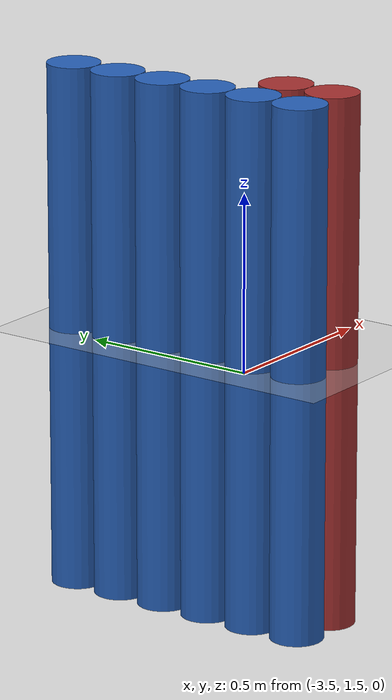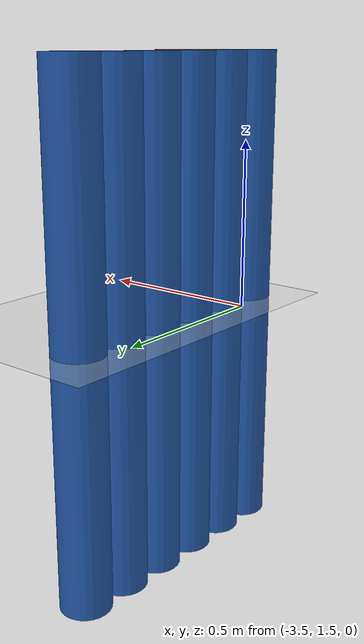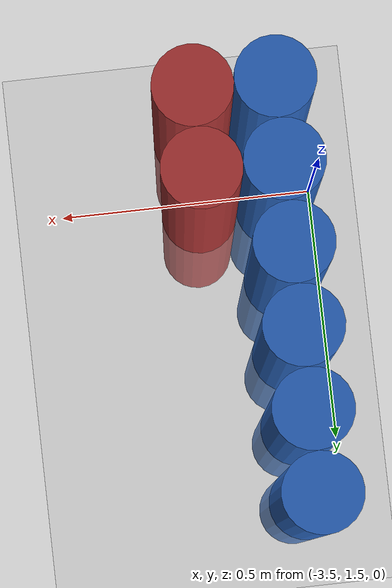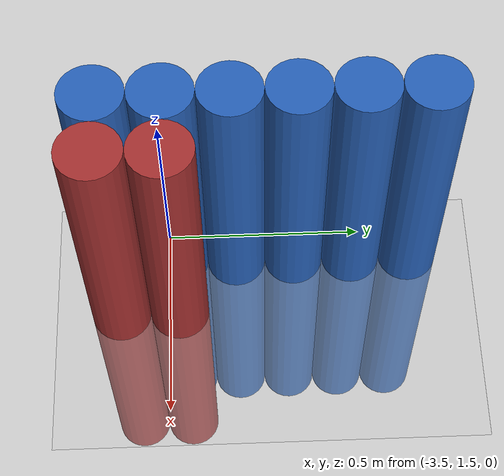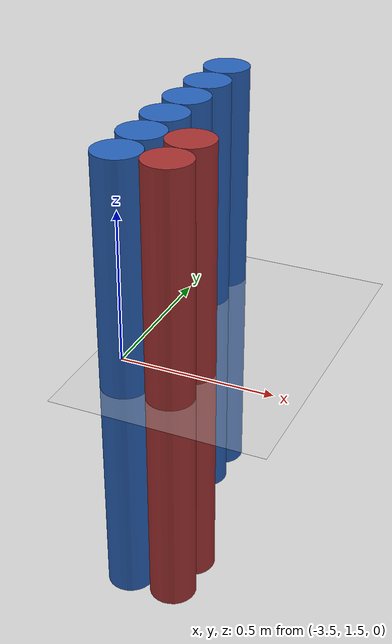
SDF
<sdf version="1.6">
 <world name="default">
  <model name="ground_plane">
   <static>1</static>
   <link name="link">
    <collision name="collision">
     <geometry><plane><normal>0 0 1</normal><size>100 100</size></plane></geometry>
     <surface><friction><ode><mu>100</mu><mu2>50</mu2></ode></friction></surface>
    </collision>
    <visual name="visual">
     <cast_shadows>0</cast_shadows>
     <geometry><plane><normal>0 0 1</normal><size>100 100</size></plane></geometry>
     <material>
      <script><uri>file://media/materials/scripts/gazebo.material</uri><name>Gazebo/Grey</name></script>
     </material>
    </visual>
   </link>
  </model>
  <model name="unit_cylinder_133">
   <static>1</static>
   <pose>-3.425000 1.375000 0.000000 0.000000 0.000000 0.000000</pose>
   <link name="link">
    <inertial>
     <mass>1</mass>
     <inertia><ixx>0.145833</ixx><ixy>0</ixy><ixz>0</ixz><iyy>0.145833</iyy><iyz>0</iyz><izz>0.125</izz></inertia>
    </inertial>
    <collision name="collision">
     <geometry><cylinder><radius>0.075000</radius><length>1.5</length></cylinder></geometry>
    </collision>
    <visual name="visual">
     <geometry><cylinder><radius>0.075000</radius><length>1.5</length></cylinder></geometry>
     <material>
      <ambient>0.152000 0.379000 0.720000 1</ambient>
      <diffuse>0.152000 0.379000 0.720000 1</diffuse>
     </material>
     <material>
      <script><name>Gazebo/Grey</name><uri>file://media/materials/scripts/gazebo.material</uri></script>
     </material>
    </visual>
   </link>
  </model>
  <model name="unit_cylinder_135">
   <static>1</static>
   <pose>-3.425000 1.525000 0.000000 0.000000 0.000000 0.000000</pose>
   <link name="link">
    <inertial>
     <mass>1</mass>
     <inertia><ixx>0.145833</ixx><ixy>0</ixy><ixz>0</ixz><iyy>0.145833</iyy><iyz>0</iyz><izz>0.125</izz></inertia>
    </inertial>
    <collision name="collision">
     <geometry><cylinder><radius>0.075000</radius><length>1.5</length></cylinder></geometry>
    </collision>
    <visual name="visual">
     <geometry><cylinder><radius>0.075000</radius><length>1.5</length></cylinder></geometry>
     <material>
      <ambient>0.152000 0.379000 0.720000 1</ambient>
      <diffuse>0.152000 0.379000 0.720000 1</diffuse>
     </material>
     <material>
      <script><name>Gazebo/Grey</name><uri>file://media/materials/scripts/gazebo.material</uri></script>
     </material>
    </visual>
   </link>
  </model>
  <model name="unit_cylinder_137">
   <static>1</static>
   <pose>-3.425000 1.675000 0.000000 0.000000 0.000000 0.000000</pose>
   <link name="link">
    <inertial>
     <mass>1</mass>
     <inertia><ixx>0.145833</ixx><ixy>0</ixy><ixz>0</ixz><iyy>0.145833</iyy><iyz>0</iyz><izz>0.125</izz></inertia>
    </inertial>
    <collision name="collision">
     <geometry><cylinder><radius>0.075000</radius><length>1.5</length></cylinder></geometry>
    </collision>
    <visual name="visual">
     <geometry><cylinder><radius>0.075000</radius><length>1.5</length></cylinder></geometry>
     <material>
      <ambient>0.152000 0.379000 0.720000 1</ambient>
      <diffuse>0.152000 0.379000 0.720000 1</diffuse>
     </material>
     <material>
      <script><name>Gazebo/Grey</name><uri>file://media/materials/scripts/gazebo.material</uri></script>
     </material>
    </visual>
   </link>
  </model>
  <model name="unit_cylinder_139">
   <static>1</static>
   <pose>-3.425000 1.825000 0.000000 0.000000 0.000000 0.000000</pose>
   <link name="link">
    <inertial>
     <mass>1</mass>
     <inertia><ixx>0.145833</ixx><ixy>0</ixy><ixz>0</ixz><iyy>0.145833</iyy><iyz>0</iyz><izz>0.125</izz></inertia>
    </inertial>
    <collision name="collision">
     <geometry><cylinder><radius>0.075000</radius><length>1.5</length></cylinder></geometry>
    </collision>
    <visual name="visual">
     <geometry><cylinder><radius>0.075000</radius><length>1.5</length></cylinder></geometry>
     <material>
      <ambient>0.152000 0.379000 0.720000 1</ambient>
      <diffuse>0.152000 0.379000 0.720000 1</diffuse>
     </material>
     <material>
      <script><name>Gazebo/Grey</name><uri>file://media/materials/scripts/gazebo.material</uri></script>
     </material>
    </visual>
   </link>
  </model>
  <model name="unit_cylinder_141">
   <static>1</static>
   <pose>-3.425000 1.975000 0.000000 0.000000 0.000000 0.000000</pose>
   <link name="link">
    <inertial>
     <mass>1</mass>
     <inertia><ixx>0.145833</ixx><ixy>0</ixy><ixz>0</ixz><iyy>0.145833</iyy><iyz>0</iyz><izz>0.125</izz></inertia>
    </inertial>
    <collision name="collision">
     <geometry><cylinder><radius>0.075000</radius><length>1.5</length></cylinder></geometry>
    </collision>
    <visual name="visual">
     <geometry><cylinder><radius>0.075000</radius><length>1.5</length></cylinder></geometry>
     <material>
      <ambient>0.152000 0.379000 0.720000 1</ambient>
      <diffuse>0.152000 0.379000 0.720000 1</diffuse>
     </material>
     <material>
      <script><name>Gazebo/Grey</name><uri>file://media/materials/scripts/gazebo.material</uri></script>
     </material>
    </visual>
   </link>
  </model>
  <model name="unit_cylinder_143">
   <static>1</static>
   <pose>-3.425000 2.125000 0.000000 0.000000 0.000000 0.000000</pose>
   <link name="link">
    <inertial>
     <mass>1</mass>
     <inertia><ixx>0.145833</ixx><ixy>0</ixy><ixz>0</ixz><iyy>0.145833</iyy><iyz>0</iyz><izz>0.125</izz></inertia>
    </inertial>
    <collision name="collision">
     <geometry><cylinder><radius>0.075000</radius><length>1.5</length></cylinder></geometry>
    </collision>
    <visual name="visual">
     <geometry><cylinder><radius>0.075000</radius><length>1.5</length></cylinder></geometry>
     <material>
      <ambient>0.152000 0.379000 0.720000 1</ambient>
      <diffuse>0.152000 0.379000 0.720000 1</diffuse>
     </material>
     <material>
      <script><name>Gazebo/Grey</name><uri>file://media/materials/scripts/gazebo.material</uri></script>
     </material>
    </visual>
   </link>
  </model>
  <model name="unit_cylinder_230">
   <static>1</static>
   <pose>-3.425000 1.375000 0.000000 0.000000 0.000000 0.000000</pose>
   <link name="link">
    <inertial>
     <mass>1</mass>
     <inertia><ixx>0.145833</ixx><ixy>0</ixy><ixz>0</ixz><iyy>0.145833</iyy><iyz>0</iyz><izz>0.125</izz></inertia>
    </inertial>
    <collision name="collision">
     <geometry><cylinder><radius>0.075000</radius><length>1.5</length></cylinder></geometry>
    </collision>
    <visual name="visual">
     <geometry><cylinder><radius>0.075000</radius><length>1.5</length></cylinder></geometry>
     <material>
      <ambient>0.152000 0.379000 0.720000 1</ambient>
      <diffuse>0.152000 0.379000 0.720000 1</diffuse>
     </material>
     <material>
      <script><name>Gazebo/Grey</name><uri>file://media/materials/scripts/gazebo.material</uri></script>
     </material>
    </visual>
   </link>
  </model>
  <model name="unit_cylinder_231">
   <static>1</static>
   <pose>-3.425000 1.525000 0.000000 0.000000 0.000000 0.000000</pose>
   <link name="link">
    <inertial>
     <mass>1</mass>
     <inertia><ixx>0.145833</ixx><ixy>0</ixy><ixz>0</ixz><iyy>0.145833</iyy><iyz>0</iyz><izz>0.125</izz></inertia>
    </inertial>
    <collision name="collision">
     <geometry><cylinder><radius>0.075000</radius><length>1.5</length></cylinder></geometry>
    </collision>
    <visual name="visual">
     <geometry><cylinder><radius>0.075000</radius><length>1.5</length></cylinder></geometry>
     <material>
      <ambient>0.152000 0.379000 0.720000 1</ambient>
      <diffuse>0.152000 0.379000 0.720000 1</diffuse>
     </material>
     <material>
      <script><name>Gazebo/Grey</name><uri>file://media/materials/scripts/gazebo.material</uri></script>
     </material>
    </visual>
   </link>
  </model>
  <model name="unit_cylinder_232">
   <static>1</static>
   <pose>-3.425000 1.675000 0.000000 0.000000 0.000000 0.000000</pose>
   <link name="link">
    <inertial>
     <mass>1</mass>
     <inertia><ixx>0.145833</ixx><ixy>0</ixy><ixz>0</ixz><iyy>0.145833</iyy><iyz>0</iyz><izz>0.125</izz></inertia>
    </inertial>
    <collision name="collision">
     <geometry><cylinder><radius>0.075000</radius><length>1.5</length></cylinder></geometry>
    </collision>
    <visual name="visual">
     <geometry><cylinder><radius>0.075000</radius><length>1.5</length></cylinder></geometry>
     <material>
      <ambient>0.152000 0.379000 0.720000 1</ambient>
      <diffuse>0.152000 0.379000 0.720000 1</diffuse>
     </material>
     <material>
      <script><name>Gazebo/Grey</name><uri>file://media/materials/scripts/gazebo.material</uri></script>
     </material>
    </visual>
   </link>
  </model>
  <model name="unit_cylinder_233">
   <static>1</static>
   <pose>-3.425000 1.825000 0.000000 0.000000 0.000000 0.000000</pose>
   <link name="link">
    <inertial>
     <mass>1</mass>
     <inertia><ixx>0.145833</ixx><ixy>0</ixy><ixz>0</ixz><iyy>0.145833</iyy><iyz>0</iyz><izz>0.125</izz></inertia>
    </inertial>
    <collision name="collision">
     <geometry><cylinder><radius>0.075000</radius><length>1.5</length></cylinder></geometry>
    </collision>
    <visual name="visual">
     <geometry><cylinder><radius>0.075000</radius><length>1.5</length></cylinder></geometry>
     <material>
      <ambient>0.152000 0.379000 0.720000 1</ambient>
      <diffuse>0.152000 0.379000 0.720000 1</diffuse>
     </material>
     <material>
      <script><name>Gazebo/Grey</name><uri>file://media/materials/scripts/gazebo.material</uri></script>
     </material>
    </visual>
   </link>
  </model>
  <model name="unit_cylinder_234">
   <static>1</static>
   <pose>-3.425000 1.975000 0.000000 0.000000 0.000000 0.000000</pose>
   <link name="link">
    <inertial>
     <mass>1</mass>
     <inertia><ixx>0.145833</ixx><ixy>0</ixy><ixz>0</ixz><iyy>0.145833</iyy><iyz>0</iyz><izz>0.125</izz></inertia>
    </inertial>
    <collision name="collision">
     <geometry><cylinder><radius>0.075000</radius><length>1.5</length></cylinder></geometry>
    </collision>
    <visual name="visual">
     <geometry><cylinder><radius>0.075000</radius><length>1.5</length></cylinder></geometry>
     <material>
      <ambient>0.152000 0.379000 0.720000 1</ambient>
      <diffuse>0.152000 0.379000 0.720000 1</diffuse>
     </material>
     <material>
      <script><name>Gazebo/Grey</name><uri>file://media/materials/scripts/gazebo.material</uri></script>
     </material>
    </visual>
   </link>
  </model>
  <model name="unit_cylinder_261">
   <static>1</static>
   <pose>-3.275000 1.375000 0.000000 0.000000 0.000000 0.000000</pose>
   <link name="link">
    <inertial>
     <mass>1</mass>
     <inertia><ixx>0.145833</ixx><ixy>0</ixy><ixz>0</ixz><iyy>0.145833</iyy><iyz>0</iyz><izz>0.125</izz></inertia>
    </inertial>
    <collision name="collision">
     <geometry><cylinder><radius>0.075000</radius><length>1.5</length></cylinder></geometry>
    </collision>
    <visual name="visual">
     <geometry><cylinder><radius>0.075000</radius><length>1.5</length></cylinder></geometry>
     <material>
      <ambient>0.648000 0.192000 0.192000 1</ambient>
      <diffuse>0.648000 0.192000 0.192000 1</diffuse>
     </material>
     <material>
      <script><name>Gazebo/Grey</name><uri>file://media/materials/scripts/gazebo.material</uri></script>
     </material>
    </visual>
   </link>
  </model>
  <model name="unit_cylinder_262">
   <static>1</static>
   <pose>-3.275000 1.525000 0.000000 0.000000 0.000000 0.000000</pose>
   <link name="link">
    <inertial>
     <mass>1</mass>
     <inertia><ixx>0.145833</ixx><ixy>0</ixy><ixz>0</ixz><iyy>0.145833</iyy><iyz>0</iyz><izz>0.125</izz></inertia>
    </inertial>
    <collision name="collision">
     <geometry><cylinder><radius>0.075000</radius><length>1.5</length></cylinder></geometry>
    </collision>
    <visual name="visual">
     <geometry><cylinder><radius>0.075000</radius><length>1.5</length></cylinder></geometry>
     <material>
      <ambient>0.648000 0.192000 0.192000 1</ambient>
      <diffuse>0.648000 0.192000 0.192000 1</diffuse>
     </material>
     <material>
      <script><name>Gazebo/Grey</name><uri>file://media/materials/scripts/gazebo.material</uri></script>
     </material>
    </visual>
   </link>
  </model>
 </world>
</sdf>
